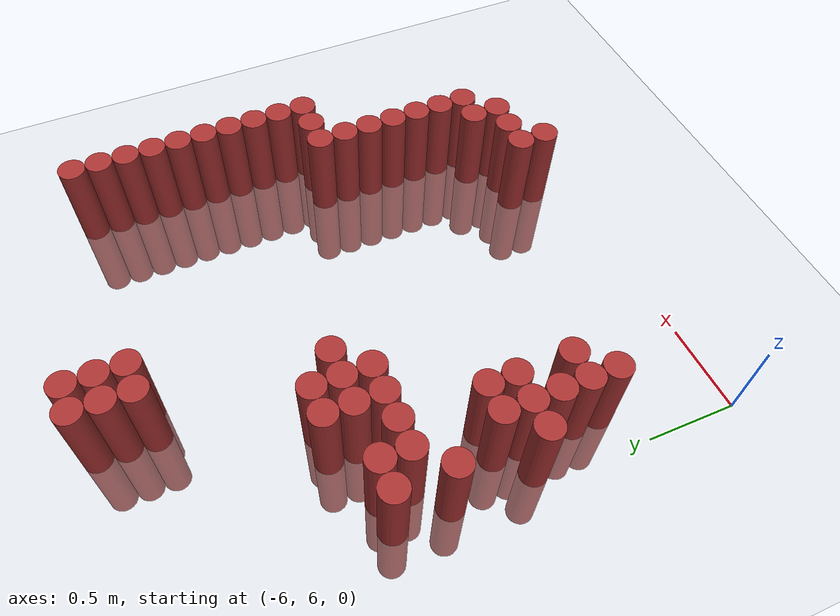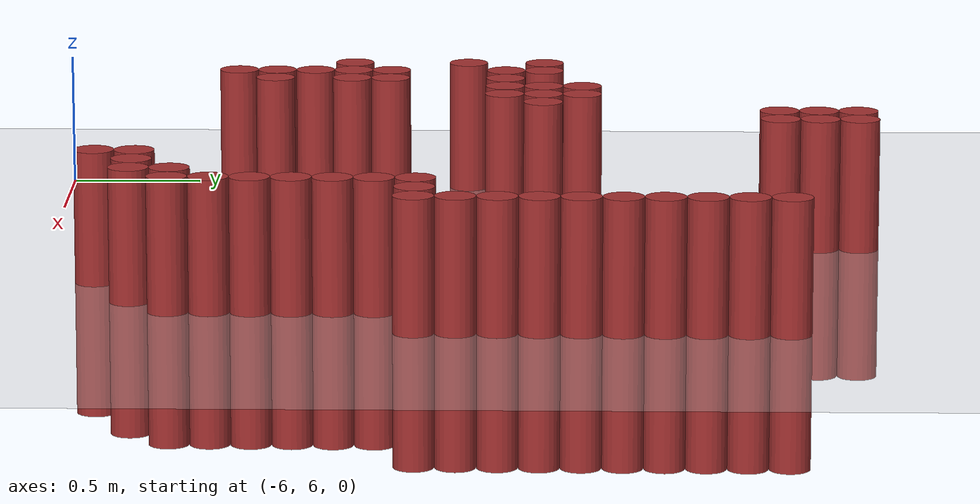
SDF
<sdf version="1.6">
 <world name="default">
  <model name="ground_plane">
   <static>1</static>
   <link name="link">
    <collision name="collision">
     <geometry><plane><normal>0 0 1</normal><size>100 100</size></plane></geometry>
     <surface><friction><ode><mu>100</mu><mu2>50</mu2></ode></friction></surface>
    </collision>
    <visual name="visual">
     <cast_shadows>0</cast_shadows>
     <geometry><plane><normal>0 0 1</normal><size>100 100</size></plane></geometry>
     <material>
      <script><uri>file://media/materials/scripts/gazebo.material</uri><name>Gazebo/Grey</name></script>
     </material>
    </visual>
   </link>
  </model>
  <model name="unit_cylinder_259">
   <static>1</static>
   <pose>-5.925000 7.125000 0.000000 0.000000 0.000000 0.000000</pose>
   <link name="link">
    <inertial>
     <mass>1</mass>
     <inertia><ixx>0.145833</ixx><ixy>0</ixy><ixz>0</ixz><iyy>0.145833</iyy><iyz>0</iyz><izz>0.125</izz></inertia>
    </inertial>
    <collision name="collision">
     <geometry><cylinder><radius>0.075000</radius><length>1</length></cylinder></geometry>
    </collision>
    <visual name="visual">
     <geometry><cylinder><radius>0.075000</radius><length>1</length></cylinder></geometry>
     <material>
      <ambient>0.648000 0.192000 0.192000 1</ambient>
      <diffuse>0.648000 0.192000 0.192000 1</diffuse>
     </material>
     <material>
      <script><name>Gazebo/Grey</name><uri>file://media/materials/scripts/gazebo.material</uri></script>
     </material>
    </visual>
   </link>
  </model>
  <model name="unit_cylinder_260">
   <static>1</static>
   <pose>-5.925000 7.575000 0.000000 0.000000 0.000000 0.000000</pose>
   <link name="link">
    <inertial>
     <mass>1</mass>
     <inertia><ixx>0.145833</ixx><ixy>0</ixy><ixz>0</ixz><iyy>0.145833</iyy><iyz>0</iyz><izz>0.125</izz></inertia>
    </inertial>
    <collision name="collision">
     <geometry><cylinder><radius>0.075000</radius><length>1</length></cylinder></geometry>
    </collision>
    <visual name="visual">
     <geometry><cylinder><radius>0.075000</radius><length>1</length></cylinder></geometry>
     <material>
      <ambient>0.648000 0.192000 0.192000 1</ambient>
      <diffuse>0.648000 0.192000 0.192000 1</diffuse>
     </material>
     <material>
      <script><name>Gazebo/Grey</name><uri>file://media/materials/scripts/gazebo.material</uri></script>
     </material>
    </visual>
   </link>
  </model>
  <model name="unit_cylinder_261">
   <static>1</static>
   <pose>-5.925000 7.875000 0.000000 0.000000 0.000000 0.000000</pose>
   <link name="link">
    <inertial>
     <mass>1</mass>
     <inertia><ixx>0.145833</ixx><ixy>0</ixy><ixz>0</ixz><iyy>0.145833</iyy><iyz>0</iyz><izz>0.125</izz></inertia>
    </inertial>
    <collision name="collision">
     <geometry><cylinder><radius>0.075000</radius><length>1</length></cylinder></geometry>
    </collision>
    <visual name="visual">
     <geometry><cylinder><radius>0.075000</radius><length>1</length></cylinder></geometry>
     <material>
      <ambient>0.648000 0.192000 0.192000 1</ambient>
      <diffuse>0.648000 0.192000 0.192000 1</diffuse>
     </material>
     <material>
      <script><name>Gazebo/Grey</name><uri>file://media/materials/scripts/gazebo.material</uri></script>
     </material>
    </visual>
   </link>
  </model>
  <model name="unit_cylinder_262">
   <static>1</static>
   <pose>-5.775000 6.675000 0.000000 0.000000 0.000000 0.000000</pose>
   <link name="link">
    <inertial>
     <mass>1</mass>
     <inertia><ixx>0.145833</ixx><ixy>0</ixy><ixz>0</ixz><iyy>0.145833</iyy><iyz>0</iyz><izz>0.125</izz></inertia>
    </inertial>
    <collision name="collision">
     <geometry><cylinder><radius>0.075000</radius><length>1</length></cylinder></geometry>
    </collision>
    <visual name="visual">
     <geometry><cylinder><radius>0.075000</radius><length>1</length></cylinder></geometry>
     <material>
      <ambient>0.648000 0.192000 0.192000 1</ambient>
      <diffuse>0.648000 0.192000 0.192000 1</diffuse>
     </material>
     <material>
      <script><name>Gazebo/Grey</name><uri>file://media/materials/scripts/gazebo.material</uri></script>
     </material>
    </visual>
   </link>
  </model>
  <model name="unit_cylinder_263">
   <static>1</static>
   <pose>-5.775000 6.825000 0.000000 0.000000 0.000000 0.000000</pose>
   <link name="link">
    <inertial>
     <mass>1</mass>
     <inertia><ixx>0.145833</ixx><ixy>0</ixy><ixz>0</ixz><iyy>0.145833</iyy><iyz>0</iyz><izz>0.125</izz></inertia>
    </inertial>
    <collision name="collision">
     <geometry><cylinder><radius>0.075000</radius><length>1</length></cylinder></geometry>
    </collision>
    <visual name="visual">
     <geometry><cylinder><radius>0.075000</radius><length>1</length></cylinder></geometry>
     <material>
      <ambient>0.648000 0.192000 0.192000 1</ambient>
      <diffuse>0.648000 0.192000 0.192000 1</diffuse>
     </material>
     <material>
      <script><name>Gazebo/Grey</name><uri>file://media/materials/scripts/gazebo.material</uri></script>
     </material>
    </visual>
   </link>
  </model>
  <model name="unit_cylinder_264">
   <static>1</static>
   <pose>-5.775000 6.975000 0.000000 0.000000 0.000000 0.000000</pose>
   <link name="link">
    <inertial>
     <mass>1</mass>
     <inertia><ixx>0.145833</ixx><ixy>0</ixy><ixz>0</ixz><iyy>0.145833</iyy><iyz>0</iyz><izz>0.125</izz></inertia>
    </inertial>
    <collision name="collision">
     <geometry><cylinder><radius>0.075000</radius><length>1</length></cylinder></geometry>
    </collision>
    <visual name="visual">
     <geometry><cylinder><radius>0.075000</radius><length>1</length></cylinder></geometry>
     <material>
      <ambient>0.648000 0.192000 0.192000 1</ambient>
      <diffuse>0.648000 0.192000 0.192000 1</diffuse>
     </material>
     <material>
      <script><name>Gazebo/Grey</name><uri>file://media/materials/scripts/gazebo.material</uri></script>
     </material>
    </visual>
   </link>
  </model>
  <model name="unit_cylinder_265">
   <static>1</static>
   <pose>-5.775000 7.125000 0.000000 0.000000 0.000000 0.000000</pose>
   <link name="link">
    <inertial>
     <mass>1</mass>
     <inertia><ixx>0.145833</ixx><ixy>0</ixy><ixz>0</ixz><iyy>0.145833</iyy><iyz>0</iyz><izz>0.125</izz></inertia>
    </inertial>
    <collision name="collision">
     <geometry><cylinder><radius>0.075000</radius><length>1</length></cylinder></geometry>
    </collision>
    <visual name="visual">
     <geometry><cylinder><radius>0.075000</radius><length>1</length></cylinder></geometry>
     <material>
      <ambient>0.648000 0.192000 0.192000 1</ambient>
      <diffuse>0.648000 0.192000 0.192000 1</diffuse>
     </material>
     <material>
      <script><name>Gazebo/Grey</name><uri>file://media/materials/scripts/gazebo.material</uri></script>
     </material>
    </visual>
   </link>
  </model>
  <model name="unit_cylinder_266">
   <static>1</static>
   <pose>-5.775000 7.275000 0.000000 0.000000 0.000000 0.000000</pose>
   <link name="link">
    <inertial>
     <mass>1</mass>
     <inertia><ixx>0.145833</ixx><ixy>0</ixy><ixz>0</ixz><iyy>0.145833</iyy><iyz>0</iyz><izz>0.125</izz></inertia>
    </inertial>
    <collision name="collision">
     <geometry><cylinder><radius>0.075000</radius><length>1</length></cylinder></geometry>
    </collision>
    <visual name="visual">
     <geometry><cylinder><radius>0.075000</radius><length>1</length></cylinder></geometry>
     <material>
      <ambient>0.648000 0.192000 0.192000 1</ambient>
      <diffuse>0.648000 0.192000 0.192000 1</diffuse>
     </material>
     <material>
      <script><name>Gazebo/Grey</name><uri>file://media/materials/scripts/gazebo.material</uri></script>
     </material>
    </visual>
   </link>
  </model>
  <model name="unit_cylinder_267">
   <static>1</static>
   <pose>-5.775000 7.725000 0.000000 0.000000 0.000000 0.000000</pose>
   <link name="link">
    <inertial>
     <mass>1</mass>
     <inertia><ixx>0.145833</ixx><ixy>0</ixy><ixz>0</ixz><iyy>0.145833</iyy><iyz>0</iyz><izz>0.125</izz></inertia>
    </inertial>
    <collision name="collision">
     <geometry><cylinder><radius>0.075000</radius><length>1</length></cylinder></geometry>
    </collision>
    <visual name="visual">
     <geometry><cylinder><radius>0.075000</radius><length>1</length></cylinder></geometry>
     <material>
      <ambient>0.648000 0.192000 0.192000 1</ambient>
      <diffuse>0.648000 0.192000 0.192000 1</diffuse>
     </material>
     <material>
      <script><name>Gazebo/Grey</name><uri>file://media/materials/scripts/gazebo.material</uri></script>
     </material>
    </visual>
   </link>
  </model>
  <model name="unit_cylinder_268">
   <static>1</static>
   <pose>-5.775000 7.875000 0.000000 0.000000 0.000000 0.000000</pose>
   <link name="link">
    <inertial>
     <mass>1</mass>
     <inertia><ixx>0.145833</ixx><ixy>0</ixy><ixz>0</ixz><iyy>0.145833</iyy><iyz>0</iyz><izz>0.125</izz></inertia>
    </inertial>
    <collision name="collision">
     <geometry><cylinder><radius>0.075000</radius><length>1</length></cylinder></geometry>
    </collision>
    <visual name="visual">
     <geometry><cylinder><radius>0.075000</radius><length>1</length></cylinder></geometry>
     <material>
      <ambient>0.648000 0.192000 0.192000 1</ambient>
      <diffuse>0.648000 0.192000 0.192000 1</diffuse>
     </material>
     <material>
      <script><name>Gazebo/Grey</name><uri>file://media/materials/scripts/gazebo.material</uri></script>
     </material>
    </visual>
   </link>
  </model>
  <model name="unit_cylinder_269">
   <static>1</static>
   <pose>-5.625000 6.825000 0.000000 0.000000 0.000000 0.000000</pose>
   <link name="link">
    <inertial>
     <mass>1</mass>
     <inertia><ixx>0.145833</ixx><ixy>0</ixy><ixz>0</ixz><iyy>0.145833</iyy><iyz>0</iyz><izz>0.125</izz></inertia>
    </inertial>
    <collision name="collision">
     <geometry><cylinder><radius>0.075000</radius><length>1</length></cylinder></geometry>
    </collision>
    <visual name="visual">
     <geometry><cylinder><radius>0.075000</radius><length>1</length></cylinder></geometry>
     <material>
      <ambient>0.648000 0.192000 0.192000 1</ambient>
      <diffuse>0.648000 0.192000 0.192000 1</diffuse>
     </material>
     <material>
      <script><name>Gazebo/Grey</name><uri>file://media/materials/scripts/gazebo.material</uri></script>
     </material>
    </visual>
   </link>
  </model>
  <model name="unit_cylinder_270">
   <static>1</static>
   <pose>-5.625000 7.125000 0.000000 0.000000 0.000000 0.000000</pose>
   <link name="link">
    <inertial>
     <mass>1</mass>
     <inertia><ixx>0.145833</ixx><ixy>0</ixy><ixz>0</ixz><iyy>0.145833</iyy><iyz>0</iyz><izz>0.125</izz></inertia>
    </inertial>
    <collision name="collision">
     <geometry><cylinder><radius>0.075000</radius><length>1</length></cylinder></geometry>
    </collision>
    <visual name="visual">
     <geometry><cylinder><radius>0.075000</radius><length>1</length></cylinder></geometry>
     <material>
      <ambient>0.648000 0.192000 0.192000 1</ambient>
      <diffuse>0.648000 0.192000 0.192000 1</diffuse>
     </material>
     <material>
      <script><name>Gazebo/Grey</name><uri>file://media/materials/scripts/gazebo.material</uri></script>
     </material>
    </visual>
   </link>
  </model>
  <model name="unit_cylinder_271">
   <static>1</static>
   <pose>-5.625000 7.275000 0.000000 0.000000 0.000000 0.000000</pose>
   <link name="link">
    <inertial>
     <mass>1</mass>
     <inertia><ixx>0.145833</ixx><ixy>0</ixy><ixz>0</ixz><iyy>0.145833</iyy><iyz>0</iyz><izz>0.125</izz></inertia>
    </inertial>
    <collision name="collision">
     <geometry><cylinder><radius>0.075000</radius><length>1</length></cylinder></geometry>
    </collision>
    <visual name="visual">
     <geometry><cylinder><radius>0.075000</radius><length>1</length></cylinder></geometry>
     <material>
      <ambient>0.648000 0.192000 0.192000 1</ambient>
      <diffuse>0.648000 0.192000 0.192000 1</diffuse>
     </material>
     <material>
      <script><name>Gazebo/Grey</name><uri>file://media/materials/scripts/gazebo.material</uri></script>
     </material>
    </visual>
   </link>
  </model>
  <model name="unit_cylinder_272">
   <static>1</static>
   <pose>-5.625000 7.725000 0.000000 0.000000 0.000000 0.000000</pose>
   <link name="link">
    <inertial>
     <mass>1</mass>
     <inertia><ixx>0.145833</ixx><ixy>0</ixy><ixz>0</ixz><iyy>0.145833</iyy><iyz>0</iyz><izz>0.125</izz></inertia>
    </inertial>
    <collision name="collision">
     <geometry><cylinder><radius>0.075000</radius><length>1</length></cylinder></geometry>
    </collision>
    <visual name="visual">
     <geometry><cylinder><radius>0.075000</radius><length>1</length></cylinder></geometry>
     <material>
      <ambient>0.648000 0.192000 0.192000 1</ambient>
      <diffuse>0.648000 0.192000 0.192000 1</diffuse>
     </material>
     <material>
      <script><name>Gazebo/Grey</name><uri>file://media/materials/scripts/gazebo.material</uri></script>
     </material>
    </visual>
   </link>
  </model>
  <model name="unit_cylinder_273">
   <static>1</static>
   <pose>-5.475000 7.725000 0.000000 0.000000 0.000000 0.000000</pose>
   <link name="link">
    <inertial>
     <mass>1</mass>
     <inertia><ixx>0.145833</ixx><ixy>0</ixy><ixz>0</ixz><iyy>0.145833</iyy><iyz>0</iyz><izz>0.125</izz></inertia>
    </inertial>
    <collision name="collision">
     <geometry><cylinder><radius>0.075000</radius><length>1</length></cylinder></geometry>
    </collision>
    <visual name="visual">
     <geometry><cylinder><radius>0.075000</radius><length>1</length></cylinder></geometry>
     <material>
      <ambient>0.648000 0.192000 0.192000 1</ambient>
      <diffuse>0.648000 0.192000 0.192000 1</diffuse>
     </material>
     <material>
      <script><name>Gazebo/Grey</name><uri>file://media/materials/scripts/gazebo.material</uri></script>
     </material>
    </visual>
   </link>
  </model>
  <model name="unit_cylinder_274">
   <static>1</static>
   <pose>-5.475000 7.875000 0.000000 0.000000 0.000000 0.000000</pose>
   <link name="link">
    <inertial>
     <mass>1</mass>
     <inertia><ixx>0.145833</ixx><ixy>0</ixy><ixz>0</ixz><iyy>0.145833</iyy><iyz>0</iyz><izz>0.125</izz></inertia>
    </inertial>
    <collision name="collision">
     <geometry><cylinder><radius>0.075000</radius><length>1</length></cylinder></geometry>
    </collision>
    <visual name="visual">
     <geometry><cylinder><radius>0.075000</radius><length>1</length></cylinder></geometry>
     <material>
      <ambient>0.648000 0.192000 0.192000 1</ambient>
      <diffuse>0.648000 0.192000 0.192000 1</diffuse>
     </material>
     <material>
      <script><name>Gazebo/Grey</name><uri>file://media/materials/scripts/gazebo.material</uri></script>
     </material>
    </visual>
   </link>
  </model>
  <model name="unit_cylinder_275">
   <static>1</static>
   <pose>-5.475000 8.025000 0.000000 0.000000 0.000000 0.000000</pose>
   <link name="link">
    <inertial>
     <mass>1</mass>
     <inertia><ixx>0.145833</ixx><ixy>0</ixy><ixz>0</ixz><iyy>0.145833</iyy><iyz>0</iyz><izz>0.125</izz></inertia>
    </inertial>
    <collision name="collision">
     <geometry><cylinder><radius>0.075000</radius><length>1</length></cylinder></geometry>
    </collision>
    <visual name="visual">
     <geometry><cylinder><radius>0.075000</radius><length>1</length></cylinder></geometry>
     <material>
      <ambient>0.648000 0.192000 0.192000 1</ambient>
      <diffuse>0.648000 0.192000 0.192000 1</diffuse>
     </material>
     <material>
      <script><name>Gazebo/Grey</name><uri>file://media/materials/scripts/gazebo.material</uri></script>
     </material>
    </visual>
   </link>
  </model>
  <model name="unit_cylinder_276">
   <static>1</static>
   <pose>-5.325000 7.725000 0.000000 0.000000 0.000000 0.000000</pose>
   <link name="link">
    <inertial>
     <mass>1</mass>
     <inertia><ixx>0.145833</ixx><ixy>0</ixy><ixz>0</ixz><iyy>0.145833</iyy><iyz>0</iyz><izz>0.125</izz></inertia>
    </inertial>
    <collision name="collision">
     <geometry><cylinder><radius>0.075000</radius><length>1</length></cylinder></geometry>
    </collision>
    <visual name="visual">
     <geometry><cylinder><radius>0.075000</radius><length>1</length></cylinder></geometry>
     <material>
      <ambient>0.648000 0.192000 0.192000 1</ambient>
      <diffuse>0.648000 0.192000 0.192000 1</diffuse>
     </material>
     <material>
      <script><name>Gazebo/Grey</name><uri>file://media/materials/scripts/gazebo.material</uri></script>
     </material>
    </visual>
   </link>
  </model>
  <model name="unit_cylinder_277">
   <static>1</static>
   <pose>-5.325000 7.875000 0.000000 0.000000 0.000000 0.000000</pose>
   <link name="link">
    <inertial>
     <mass>1</mass>
     <inertia><ixx>0.145833</ixx><ixy>0</ixy><ixz>0</ixz><iyy>0.145833</iyy><iyz>0</iyz><izz>0.125</izz></inertia>
    </inertial>
    <collision name="collision">
     <geometry><cylinder><radius>0.075000</radius><length>1</length></cylinder></geometry>
    </collision>
    <visual name="visual">
     <geometry><cylinder><radius>0.075000</radius><length>1</length></cylinder></geometry>
     <material>
      <ambient>0.648000 0.192000 0.192000 1</ambient>
      <diffuse>0.648000 0.192000 0.192000 1</diffuse>
     </material>
     <material>
      <script><name>Gazebo/Grey</name><uri>file://media/materials/scripts/gazebo.material</uri></script>
     </material>
    </visual>
   </link>
  </model>
  <model name="unit_cylinder_278">
   <static>1</static>
   <pose>-5.325000 8.025000 0.000000 0.000000 0.000000 0.000000</pose>
   <link name="link">
    <inertial>
     <mass>1</mass>
     <inertia><ixx>0.145833</ixx><ixy>0</ixy><ixz>0</ixz><iyy>0.145833</iyy><iyz>0</iyz><izz>0.125</izz></inertia>
    </inertial>
    <collision name="collision">
     <geometry><cylinder><radius>0.075000</radius><length>1</length></cylinder></geometry>
    </collision>
    <visual name="visual">
     <geometry><cylinder><radius>0.075000</radius><length>1</length></cylinder></geometry>
     <material>
      <ambient>0.648000 0.192000 0.192000 1</ambient>
      <diffuse>0.648000 0.192000 0.192000 1</diffuse>
     </material>
     <material>
      <script><name>Gazebo/Grey</name><uri>file://media/materials/scripts/gazebo.material</uri></script>
     </material>
    </visual>
   </link>
  </model>
  <model name="unit_cylinder_279">
   <static>1</static>
   <pose>-5.175000 7.875000 0.000000 0.000000 0.000000 0.000000</pose>
   <link name="link">
    <inertial>
     <mass>1</mass>
     <inertia><ixx>0.145833</ixx><ixy>0</ixy><ixz>0</ixz><iyy>0.145833</iyy><iyz>0</iyz><izz>0.125</izz></inertia>
    </inertial>
    <collision name="collision">
     <geometry><cylinder><radius>0.075000</radius><length>1</length></cylinder></geometry>
    </collision>
    <visual name="visual">
     <geometry><cylinder><radius>0.075000</radius><length>1</length></cylinder></geometry>
     <material>
      <ambient>0.648000 0.192000 0.192000 1</ambient>
      <diffuse>0.648000 0.192000 0.192000 1</diffuse>
     </material>
     <material>
      <script><name>Gazebo/Grey</name><uri>file://media/materials/scripts/gazebo.material</uri></script>
     </material>
    </visual>
   </link>
  </model>
  <model name="unit_cylinder_280">
   <static>1</static>
   <pose>-5.025000 8.775000 0.000000 0.000000 0.000000 0.000000</pose>
   <link name="link">
    <inertial>
     <mass>1</mass>
     <inertia><ixx>0.145833</ixx><ixy>0</ixy><ixz>0</ixz><iyy>0.145833</iyy><iyz>0</iyz><izz>0.125</izz></inertia>
    </inertial>
    <collision name="collision">
     <geometry><cylinder><radius>0.075000</radius><length>1</length></cylinder></geometry>
    </collision>
    <visual name="visual">
     <geometry><cylinder><radius>0.075000</radius><length>1</length></cylinder></geometry>
     <material>
      <ambient>0.648000 0.192000 0.192000 1</ambient>
      <diffuse>0.648000 0.192000 0.192000 1</diffuse>
     </material>
     <material>
      <script><name>Gazebo/Grey</name><uri>file://media/materials/scripts/gazebo.material</uri></script>
     </material>
    </visual>
   </link>
  </model>
  <model name="unit_cylinder_281">
   <static>1</static>
   <pose>-5.025000 8.925000 0.000000 0.000000 0.000000 0.000000</pose>
   <link name="link">
    <inertial>
     <mass>1</mass>
     <inertia><ixx>0.145833</ixx><ixy>0</ixy><ixz>0</ixz><iyy>0.145833</iyy><iyz>0</iyz><izz>0.125</izz></inertia>
    </inertial>
    <collision name="collision">
     <geometry><cylinder><radius>0.075000</radius><length>1</length></cylinder></geometry>
    </collision>
    <visual name="visual">
     <geometry><cylinder><radius>0.075000</radius><length>1</length></cylinder></geometry>
     <material>
      <ambient>0.648000 0.192000 0.192000 1</ambient>
      <diffuse>0.648000 0.192000 0.192000 1</diffuse>
     </material>
     <material>
      <script><name>Gazebo/Grey</name><uri>file://media/materials/scripts/gazebo.material</uri></script>
     </material>
    </visual>
   </link>
  </model>
  <model name="unit_cylinder_282">
   <static>1</static>
   <pose>-5.025000 9.075000 0.000000 0.000000 0.000000 0.000000</pose>
   <link name="link">
    <inertial>
     <mass>1</mass>
     <inertia><ixx>0.145833</ixx><ixy>0</ixy><ixz>0</ixz><iyy>0.145833</iyy><iyz>0</iyz><izz>0.125</izz></inertia>
    </inertial>
    <collision name="collision">
     <geometry><cylinder><radius>0.075000</radius><length>1</length></cylinder></geometry>
    </collision>
    <visual name="visual">
     <geometry><cylinder><radius>0.075000</radius><length>1</length></cylinder></geometry>
     <material>
      <ambient>0.648000 0.192000 0.192000 1</ambient>
      <diffuse>0.648000 0.192000 0.192000 1</diffuse>
     </material>
     <material>
      <script><name>Gazebo/Grey</name><uri>file://media/materials/scripts/gazebo.material</uri></script>
     </material>
    </visual>
   </link>
  </model>
  <model name="unit_cylinder_283">
   <static>1</static>
   <pose>-4.875000 8.775000 0.000000 0.000000 0.000000 0.000000</pose>
   <link name="link">
    <inertial>
     <mass>1</mass>
     <inertia><ixx>0.145833</ixx><ixy>0</ixy><ixz>0</ixz><iyy>0.145833</iyy><iyz>0</iyz><izz>0.125</izz></inertia>
    </inertial>
    <collision name="collision">
     <geometry><cylinder><radius>0.075000</radius><length>1</length></cylinder></geometry>
    </collision>
    <visual name="visual">
     <geometry><cylinder><radius>0.075000</radius><length>1</length></cylinder></geometry>
     <material>
      <ambient>0.648000 0.192000 0.192000 1</ambient>
      <diffuse>0.648000 0.192000 0.192000 1</diffuse>
     </material>
     <material>
      <script><name>Gazebo/Grey</name><uri>file://media/materials/scripts/gazebo.material</uri></script>
     </material>
    </visual>
   </link>
  </model>
  <model name="unit_cylinder_284">
   <static>1</static>
   <pose>-4.875000 8.925000 0.000000 0.000000 0.000000 0.000000</pose>
   <link name="link">
    <inertial>
     <mass>1</mass>
     <inertia><ixx>0.145833</ixx><ixy>0</ixy><ixz>0</ixz><iyy>0.145833</iyy><iyz>0</iyz><izz>0.125</izz></inertia>
    </inertial>
    <collision name="collision">
     <geometry><cylinder><radius>0.075000</radius><length>1</length></cylinder></geometry>
    </collision>
    <visual name="visual">
     <geometry><cylinder><radius>0.075000</radius><length>1</length></cylinder></geometry>
     <material>
      <ambient>0.648000 0.192000 0.192000 1</ambient>
      <diffuse>0.648000 0.192000 0.192000 1</diffuse>
     </material>
     <material>
      <script><name>Gazebo/Grey</name><uri>file://media/materials/scripts/gazebo.material</uri></script>
     </material>
    </visual>
   </link>
  </model>
  <model name="unit_cylinder_285">
   <static>1</static>
   <pose>-4.875000 9.075000 0.000000 0.000000 0.000000 0.000000</pose>
   <link name="link">
    <inertial>
     <mass>1</mass>
     <inertia><ixx>0.145833</ixx><ixy>0</ixy><ixz>0</ixz><iyy>0.145833</iyy><iyz>0</iyz><izz>0.125</izz></inertia>
    </inertial>
    <collision name="collision">
     <geometry><cylinder><radius>0.075000</radius><length>1</length></cylinder></geometry>
    </collision>
    <visual name="visual">
     <geometry><cylinder><radius>0.075000</radius><length>1</length></cylinder></geometry>
     <material>
      <ambient>0.648000 0.192000 0.192000 1</ambient>
      <diffuse>0.648000 0.192000 0.192000 1</diffuse>
     </material>
     <material>
      <script><name>Gazebo/Grey</name><uri>file://media/materials/scripts/gazebo.material</uri></script>
     </material>
    </visual>
   </link>
  </model>
  <model name="unit_cylinder_297">
   <static>1</static>
   <pose>-4.275000 6.225000 0.000000 0.000000 0.000000 0.000000</pose>
   <link name="link">
    <inertial>
     <mass>1</mass>
     <inertia><ixx>0.145833</ixx><ixy>0</ixy><ixz>0</ixz><iyy>0.145833</iyy><iyz>0</iyz><izz>0.125</izz></inertia>
    </inertial>
    <collision name="collision">
     <geometry><cylinder><radius>0.075000</radius><length>1</length></cylinder></geometry>
    </collision>
    <visual name="visual">
     <geometry><cylinder><radius>0.075000</radius><length>1</length></cylinder></geometry>
     <material>
      <ambient>0.648000 0.192000 0.192000 1</ambient>
      <diffuse>0.648000 0.192000 0.192000 1</diffuse>
     </material>
     <material>
      <script><name>Gazebo/Grey</name><uri>file://media/materials/scripts/gazebo.material</uri></script>
     </material>
    </visual>
   </link>
  </model>
  <model name="unit_cylinder_298">
   <static>1</static>
   <pose>-4.275000 6.375000 0.000000 0.000000 0.000000 0.000000</pose>
   <link name="link">
    <inertial>
     <mass>1</mass>
     <inertia><ixx>0.145833</ixx><ixy>0</ixy><ixz>0</ixz><iyy>0.145833</iyy><iyz>0</iyz><izz>0.125</izz></inertia>
    </inertial>
    <collision name="collision">
     <geometry><cylinder><radius>0.075000</radius><length>1</length></cylinder></geometry>
    </collision>
    <visual name="visual">
     <geometry><cylinder><radius>0.075000</radius><length>1</length></cylinder></geometry>
     <material>
      <ambient>0.648000 0.192000 0.192000 1</ambient>
      <diffuse>0.648000 0.192000 0.192000 1</diffuse>
     </material>
     <material>
      <script><name>Gazebo/Grey</name><uri>file://media/materials/scripts/gazebo.material</uri></script>
     </material>
    </visual>
   </link>
  </model>
  <model name="unit_cylinder_300">
   <static>1</static>
   <pose>-4.125000 6.375000 0.000000 0.000000 0.000000 0.000000</pose>
   <link name="link">
    <inertial>
     <mass>1</mass>
     <inertia><ixx>0.145833</ixx><ixy>0</ixy><ixz>0</ixz><iyy>0.145833</iyy><iyz>0</iyz><izz>0.125</izz></inertia>
    </inertial>
    <collision name="collision">
     <geometry><cylinder><radius>0.075000</radius><length>1</length></cylinder></geometry>
    </collision>
    <visual name="visual">
     <geometry><cylinder><radius>0.075000</radius><length>1</length></cylinder></geometry>
     <material>
      <ambient>0.648000 0.192000 0.192000 1</ambient>
      <diffuse>0.648000 0.192000 0.192000 1</diffuse>
     </material>
     <material>
      <script><name>Gazebo/Grey</name><uri>file://media/materials/scripts/gazebo.material</uri></script>
     </material>
    </visual>
   </link>
  </model>
  <model name="unit_cylinder_302">
   <static>1</static>
   <pose>-3.975000 6.375000 0.000000 0.000000 0.000000 0.000000</pose>
   <link name="link">
    <inertial>
     <mass>1</mass>
     <inertia><ixx>0.145833</ixx><ixy>0</ixy><ixz>0</ixz><iyy>0.145833</iyy><iyz>0</iyz><izz>0.125</izz></inertia>
    </inertial>
    <collision name="collision">
     <geometry><cylinder><radius>0.075000</radius><length>1</length></cylinder></geometry>
    </collision>
    <visual name="visual">
     <geometry><cylinder><radius>0.075000</radius><length>1</length></cylinder></geometry>
     <material>
      <ambient>0.648000 0.192000 0.192000 1</ambient>
      <diffuse>0.648000 0.192000 0.192000 1</diffuse>
     </material>
     <material>
      <script><name>Gazebo/Grey</name><uri>file://media/materials/scripts/gazebo.material</uri></script>
     </material>
    </visual>
   </link>
  </model>
  <model name="unit_cylinder_303">
   <static>1</static>
   <pose>-3.975000 6.525000 0.000000 0.000000 0.000000 0.000000</pose>
   <link name="link">
    <inertial>
     <mass>1</mass>
     <inertia><ixx>0.145833</ixx><ixy>0</ixy><ixz>0</ixz><iyy>0.145833</iyy><iyz>0</iyz><izz>0.125</izz></inertia>
    </inertial>
    <collision name="collision">
     <geometry><cylinder><radius>0.075000</radius><length>1</length></cylinder></geometry>
    </collision>
    <visual name="visual">
     <geometry><cylinder><radius>0.075000</radius><length>1</length></cylinder></geometry>
     <material>
      <ambient>0.648000 0.192000 0.192000 1</ambient>
      <diffuse>0.648000 0.192000 0.192000 1</diffuse>
     </material>
     <material>
      <script><name>Gazebo/Grey</name><uri>file://media/materials/scripts/gazebo.material</uri></script>
     </material>
    </visual>
   </link>
  </model>
  <model name="unit_cylinder_305">
   <static>1</static>
   <pose>-3.825000 6.525000 0.000000 0.000000 0.000000 0.000000</pose>
   <link name="link">
    <inertial>
     <mass>1</mass>
     <inertia><ixx>0.145833</ixx><ixy>0</ixy><ixz>0</ixz><iyy>0.145833</iyy><iyz>0</iyz><izz>0.125</izz></inertia>
    </inertial>
    <collision name="collision">
     <geometry><cylinder><radius>0.075000</radius><length>1</length></cylinder></geometry>
    </collision>
    <visual name="visual">
     <geometry><cylinder><radius>0.075000</radius><length>1</length></cylinder></geometry>
     <material>
      <ambient>0.648000 0.192000 0.192000 1</ambient>
      <diffuse>0.648000 0.192000 0.192000 1</diffuse>
     </material>
     <material>
      <script><name>Gazebo/Grey</name><uri>file://media/materials/scripts/gazebo.material</uri></script>
     </material>
    </visual>
   </link>
  </model>
  <model name="unit_cylinder_306">
   <static>1</static>
   <pose>-3.825000 6.675000 0.000000 0.000000 0.000000 0.000000</pose>
   <link name="link">
    <inertial>
     <mass>1</mass>
     <inertia><ixx>0.145833</ixx><ixy>0</ixy><ixz>0</ixz><iyy>0.145833</iyy><iyz>0</iyz><izz>0.125</izz></inertia>
    </inertial>
    <collision name="collision">
     <geometry><cylinder><radius>0.075000</radius><length>1</length></cylinder></geometry>
    </collision>
    <visual name="visual">
     <geometry><cylinder><radius>0.075000</radius><length>1</length></cylinder></geometry>
     <material>
      <ambient>0.648000 0.192000 0.192000 1</ambient>
      <diffuse>0.648000 0.192000 0.192000 1</diffuse>
     </material>
     <material>
      <script><name>Gazebo/Grey</name><uri>file://media/materials/scripts/gazebo.material</uri></script>
     </material>
    </visual>
   </link>
  </model>
  <model name="unit_cylinder_307">
   <static>1</static>
   <pose>-3.825000 6.825000 0.000000 0.000000 0.000000 0.000000</pose>
   <link name="link">
    <inertial>
     <mass>1</mass>
     <inertia><ixx>0.145833</ixx><ixy>0</ixy><ixz>0</ixz><iyy>0.145833</iyy><iyz>0</iyz><izz>0.125</izz></inertia>
    </inertial>
    <collision name="collision">
     <geometry><cylinder><radius>0.075000</radius><length>1</length></cylinder></geometry>
    </collision>
    <visual name="visual">
     <geometry><cylinder><radius>0.075000</radius><length>1</length></cylinder></geometry>
     <material>
      <ambient>0.648000 0.192000 0.192000 1</ambient>
      <diffuse>0.648000 0.192000 0.192000 1</diffuse>
     </material>
     <material>
      <script><name>Gazebo/Grey</name><uri>file://media/materials/scripts/gazebo.material</uri></script>
     </material>
    </visual>
   </link>
  </model>
  <model name="unit_cylinder_308">
   <static>1</static>
   <pose>-3.825000 6.975000 0.000000 0.000000 0.000000 0.000000</pose>
   <link name="link">
    <inertial>
     <mass>1</mass>
     <inertia><ixx>0.145833</ixx><ixy>0</ixy><ixz>0</ixz><iyy>0.145833</iyy><iyz>0</iyz><izz>0.125</izz></inertia>
    </inertial>
    <collision name="collision">
     <geometry><cylinder><radius>0.075000</radius><length>1</length></cylinder></geometry>
    </collision>
    <visual name="visual">
     <geometry><cylinder><radius>0.075000</radius><length>1</length></cylinder></geometry>
     <material>
      <ambient>0.648000 0.192000 0.192000 1</ambient>
      <diffuse>0.648000 0.192000 0.192000 1</diffuse>
     </material>
     <material>
      <script><name>Gazebo/Grey</name><uri>file://media/materials/scripts/gazebo.material</uri></script>
     </material>
    </visual>
   </link>
  </model>
  <model name="unit_cylinder_309">
   <static>1</static>
   <pose>-3.825000 7.125000 0.000000 0.000000 0.000000 0.000000</pose>
   <link name="link">
    <inertial>
     <mass>1</mass>
     <inertia><ixx>0.145833</ixx><ixy>0</ixy><ixz>0</ixz><iyy>0.145833</iyy><iyz>0</iyz><izz>0.125</izz></inertia>
    </inertial>
    <collision name="collision">
     <geometry><cylinder><radius>0.075000</radius><length>1</length></cylinder></geometry>
    </collision>
    <visual name="visual">
     <geometry><cylinder><radius>0.075000</radius><length>1</length></cylinder></geometry>
     <material>
      <ambient>0.648000 0.192000 0.192000 1</ambient>
      <diffuse>0.648000 0.192000 0.192000 1</diffuse>
     </material>
     <material>
      <script><name>Gazebo/Grey</name><uri>file://media/materials/scripts/gazebo.material</uri></script>
     </material>
    </visual>
   </link>
  </model>
  <model name="unit_cylinder_310">
   <static>1</static>
   <pose>-3.825000 7.275000 0.000000 0.000000 0.000000 0.000000</pose>
   <link name="link">
    <inertial>
     <mass>1</mass>
     <inertia><ixx>0.145833</ixx><ixy>0</ixy><ixz>0</ixz><iyy>0.145833</iyy><iyz>0</iyz><izz>0.125</izz></inertia>
    </inertial>
    <collision name="collision">
     <geometry><cylinder><radius>0.075000</radius><length>1</length></cylinder></geometry>
    </collision>
    <visual name="visual">
     <geometry><cylinder><radius>0.075000</radius><length>1</length></cylinder></geometry>
     <material>
      <ambient>0.648000 0.192000 0.192000 1</ambient>
      <diffuse>0.648000 0.192000 0.192000 1</diffuse>
     </material>
     <material>
      <script><name>Gazebo/Grey</name><uri>file://media/materials/scripts/gazebo.material</uri></script>
     </material>
    </visual>
   </link>
  </model>
  <model name="unit_cylinder_311">
   <static>1</static>
   <pose>-3.825000 7.425000 0.000000 0.000000 0.000000 0.000000</pose>
   <link name="link">
    <inertial>
     <mass>1</mass>
     <inertia><ixx>0.145833</ixx><ixy>0</ixy><ixz>0</ixz><iyy>0.145833</iyy><iyz>0</iyz><izz>0.125</izz></inertia>
    </inertial>
    <collision name="collision">
     <geometry><cylinder><radius>0.075000</radius><length>1</length></cylinder></geometry>
    </collision>
    <visual name="visual">
     <geometry><cylinder><radius>0.075000</radius><length>1</length></cylinder></geometry>
     <material>
      <ambient>0.648000 0.192000 0.192000 1</ambient>
      <diffuse>0.648000 0.192000 0.192000 1</diffuse>
     </material>
     <material>
      <script><name>Gazebo/Grey</name><uri>file://media/materials/scripts/gazebo.material</uri></script>
     </material>
    </visual>
   </link>
  </model>
  <model name="unit_cylinder_313">
   <static>1</static>
   <pose>-3.675000 7.425000 0.000000 0.000000 0.000000 0.000000</pose>
   <link name="link">
    <inertial>
     <mass>1</mass>
     <inertia><ixx>0.145833</ixx><ixy>0</ixy><ixz>0</ixz><iyy>0.145833</iyy><iyz>0</iyz><izz>0.125</izz></inertia>
    </inertial>
    <collision name="collision">
     <geometry><cylinder><radius>0.075000</radius><length>1</length></cylinder></geometry>
    </collision>
    <visual name="visual">
     <geometry><cylinder><radius>0.075000</radius><length>1</length></cylinder></geometry>
     <material>
      <ambient>0.648000 0.192000 0.192000 1</ambient>
      <diffuse>0.648000 0.192000 0.192000 1</diffuse>
     </material>
     <material>
      <script><name>Gazebo/Grey</name><uri>file://media/materials/scripts/gazebo.material</uri></script>
     </material>
    </visual>
   </link>
  </model>
  <model name="unit_cylinder_315">
   <static>1</static>
   <pose>-3.525000 7.425000 0.000000 0.000000 0.000000 0.000000</pose>
   <link name="link">
    <inertial>
     <mass>1</mass>
     <inertia><ixx>0.145833</ixx><ixy>0</ixy><ixz>0</ixz><iyy>0.145833</iyy><iyz>0</iyz><izz>0.125</izz></inertia>
    </inertial>
    <collision name="collision">
     <geometry><cylinder><radius>0.075000</radius><length>1</length></cylinder></geometry>
    </collision>
    <visual name="visual">
     <geometry><cylinder><radius>0.075000</radius><length>1</length></cylinder></geometry>
     <material>
      <ambient>0.648000 0.192000 0.192000 1</ambient>
      <diffuse>0.648000 0.192000 0.192000 1</diffuse>
     </material>
     <material>
      <script><name>Gazebo/Grey</name><uri>file://media/materials/scripts/gazebo.material</uri></script>
     </material>
    </visual>
   </link>
  </model>
  <model name="unit_cylinder_316">
   <static>1</static>
   <pose>-3.525000 7.575000 0.000000 0.000000 0.000000 0.000000</pose>
   <link name="link">
    <inertial>
     <mass>1</mass>
     <inertia><ixx>0.145833</ixx><ixy>0</ixy><ixz>0</ixz><iyy>0.145833</iyy><iyz>0</iyz><izz>0.125</izz></inertia>
    </inertial>
    <collision name="collision">
     <geometry><cylinder><radius>0.075000</radius><length>1</length></cylinder></geometry>
    </collision>
    <visual name="visual">
     <geometry><cylinder><radius>0.075000</radius><length>1</length></cylinder></geometry>
     <material>
      <ambient>0.648000 0.192000 0.192000 1</ambient>
      <diffuse>0.648000 0.192000 0.192000 1</diffuse>
     </material>
     <material>
      <script><name>Gazebo/Grey</name><uri>file://media/materials/scripts/gazebo.material</uri></script>
     </material>
    </visual>
   </link>
  </model>
  <model name="unit_cylinder_317">
   <static>1</static>
   <pose>-3.525000 7.725000 0.000000 0.000000 0.000000 0.000000</pose>
   <link name="link">
    <inertial>
     <mass>1</mass>
     <inertia><ixx>0.145833</ixx><ixy>0</ixy><ixz>0</ixz><iyy>0.145833</iyy><iyz>0</iyz><izz>0.125</izz></inertia>
    </inertial>
    <collision name="collision">
     <geometry><cylinder><radius>0.075000</radius><length>1</length></cylinder></geometry>
    </collision>
    <visual name="visual">
     <geometry><cylinder><radius>0.075000</radius><length>1</length></cylinder></geometry>
     <material>
      <ambient>0.648000 0.192000 0.192000 1</ambient>
      <diffuse>0.648000 0.192000 0.192000 1</diffuse>
     </material>
     <material>
      <script><name>Gazebo/Grey</name><uri>file://media/materials/scripts/gazebo.material</uri></script>
     </material>
    </visual>
   </link>
  </model>
  <model name="unit_cylinder_318">
   <static>1</static>
   <pose>-3.525000 7.875000 0.000000 0.000000 0.000000 0.000000</pose>
   <link name="link">
    <inertial>
     <mass>1</mass>
     <inertia><ixx>0.145833</ixx><ixy>0</ixy><ixz>0</ixz><iyy>0.145833</iyy><iyz>0</iyz><izz>0.125</izz></inertia>
    </inertial>
    <collision name="collision">
     <geometry><cylinder><radius>0.075000</radius><length>1</length></cylinder></geometry>
    </collision>
    <visual name="visual">
     <geometry><cylinder><radius>0.075000</radius><length>1</length></cylinder></geometry>
     <material>
      <ambient>0.648000 0.192000 0.192000 1</ambient>
      <diffuse>0.648000 0.192000 0.192000 1</diffuse>
     </material>
     <material>
      <script><name>Gazebo/Grey</name><uri>file://media/materials/scripts/gazebo.material</uri></script>
     </material>
    </visual>
   </link>
  </model>
  <model name="unit_cylinder_319">
   <static>1</static>
   <pose>-3.525000 8.025000 0.000000 0.000000 0.000000 0.000000</pose>
   <link name="link">
    <inertial>
     <mass>1</mass>
     <inertia><ixx>0.145833</ixx><ixy>0</ixy><ixz>0</ixz><iyy>0.145833</iyy><iyz>0</iyz><izz>0.125</izz></inertia>
    </inertial>
    <collision name="collision">
     <geometry><cylinder><radius>0.075000</radius><length>1</length></cylinder></geometry>
    </collision>
    <visual name="visual">
     <geometry><cylinder><radius>0.075000</radius><length>1</length></cylinder></geometry>
     <material>
      <ambient>0.648000 0.192000 0.192000 1</ambient>
      <diffuse>0.648000 0.192000 0.192000 1</diffuse>
     </material>
     <material>
      <script><name>Gazebo/Grey</name><uri>file://media/materials/scripts/gazebo.material</uri></script>
     </material>
    </visual>
   </link>
  </model>
  <model name="unit_cylinder_320">
   <static>1</static>
   <pose>-3.525000 8.175000 0.000000 0.000000 0.000000 0.000000</pose>
   <link name="link">
    <inertial>
     <mass>1</mass>
     <inertia><ixx>0.145833</ixx><ixy>0</ixy><ixz>0</ixz><iyy>0.145833</iyy><iyz>0</iyz><izz>0.125</izz></inertia>
    </inertial>
    <collision name="collision">
     <geometry><cylinder><radius>0.075000</radius><length>1</length></cylinder></geometry>
    </collision>
    <visual name="visual">
     <geometry><cylinder><radius>0.075000</radius><length>1</length></cylinder></geometry>
     <material>
      <ambient>0.648000 0.192000 0.192000 1</ambient>
      <diffuse>0.648000 0.192000 0.192000 1</diffuse>
     </material>
     <material>
      <script><name>Gazebo/Grey</name><uri>file://media/materials/scripts/gazebo.material</uri></script>
     </material>
    </visual>
   </link>
  </model>
  <model name="unit_cylinder_321">
   <static>1</static>
   <pose>-3.525000 8.325000 0.000000 0.000000 0.000000 0.000000</pose>
   <link name="link">
    <inertial>
     <mass>1</mass>
     <inertia><ixx>0.145833</ixx><ixy>0</ixy><ixz>0</ixz><iyy>0.145833</iyy><iyz>0</iyz><izz>0.125</izz></inertia>
    </inertial>
    <collision name="collision">
     <geometry><cylinder><radius>0.075000</radius><length>1</length></cylinder></geometry>
    </collision>
    <visual name="visual">
     <geometry><cylinder><radius>0.075000</radius><length>1</length></cylinder></geometry>
     <material>
      <ambient>0.648000 0.192000 0.192000 1</ambient>
      <diffuse>0.648000 0.192000 0.192000 1</diffuse>
     </material>
     <material>
      <script><name>Gazebo/Grey</name><uri>file://media/materials/scripts/gazebo.material</uri></script>
     </material>
    </visual>
   </link>
  </model>
  <model name="unit_cylinder_322">
   <static>1</static>
   <pose>-3.525000 8.475000 0.000000 0.000000 0.000000 0.000000</pose>
   <link name="link">
    <inertial>
     <mass>1</mass>
     <inertia><ixx>0.145833</ixx><ixy>0</ixy><ixz>0</ixz><iyy>0.145833</iyy><iyz>0</iyz><izz>0.125</izz></inertia>
    </inertial>
    <collision name="collision">
     <geometry><cylinder><radius>0.075000</radius><length>1</length></cylinder></geometry>
    </collision>
    <visual name="visual">
     <geometry><cylinder><radius>0.075000</radius><length>1</length></cylinder></geometry>
     <material>
      <ambient>0.648000 0.192000 0.192000 1</ambient>
      <diffuse>0.648000 0.192000 0.192000 1</diffuse>
     </material>
     <material>
      <script><name>Gazebo/Grey</name><uri>file://media/materials/scripts/gazebo.material</uri></script>
     </material>
    </visual>
   </link>
  </model>
  <model name="unit_cylinder_323">
   <static>1</static>
   <pose>-3.525000 8.625000 0.000000 0.000000 0.000000 0.000000</pose>
   <link name="link">
    <inertial>
     <mass>1</mass>
     <inertia><ixx>0.145833</ixx><ixy>0</ixy><ixz>0</ixz><iyy>0.145833</iyy><iyz>0</iyz><izz>0.125</izz></inertia>
    </inertial>
    <collision name="collision">
     <geometry><cylinder><radius>0.075000</radius><length>1</length></cylinder></geometry>
    </collision>
    <visual name="visual">
     <geometry><cylinder><radius>0.075000</radius><length>1</length></cylinder></geometry>
     <material>
      <ambient>0.648000 0.192000 0.192000 1</ambient>
      <diffuse>0.648000 0.192000 0.192000 1</diffuse>
     </material>
     <material>
      <script><name>Gazebo/Grey</name><uri>file://media/materials/scripts/gazebo.material</uri></script>
     </material>
    </visual>
   </link>
  </model>
  <model name="unit_cylinder_324">
   <static>1</static>
   <pose>-3.525000 8.775000 0.000000 0.000000 0.000000 0.000000</pose>
   <link name="link">
    <inertial>
     <mass>1</mass>
     <inertia><ixx>0.145833</ixx><ixy>0</ixy><ixz>0</ixz><iyy>0.145833</iyy><iyz>0</iyz><izz>0.125</izz></inertia>
    </inertial>
    <collision name="collision">
     <geometry><cylinder><radius>0.075000</radius><length>1</length></cylinder></geometry>
    </collision>
    <visual name="visual">
     <geometry><cylinder><radius>0.075000</radius><length>1</length></cylinder></geometry>
     <material>
      <ambient>0.648000 0.192000 0.192000 1</ambient>
      <diffuse>0.648000 0.192000 0.192000 1</diffuse>
     </material>
     <material>
      <script><name>Gazebo/Grey</name><uri>file://media/materials/scripts/gazebo.material</uri></script>
     </material>
    </visual>
   </link>
  </model>
 </world>
</sdf>
